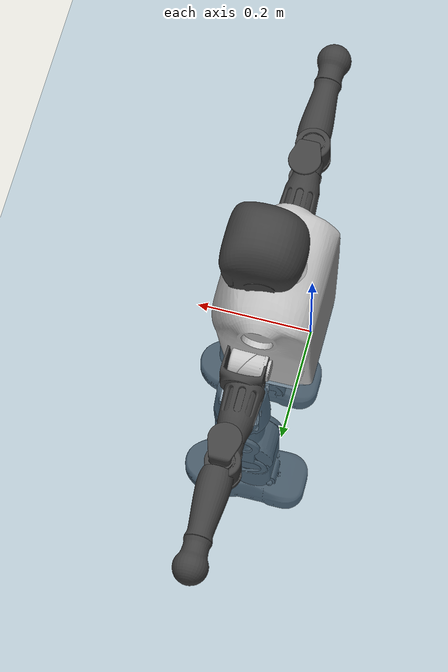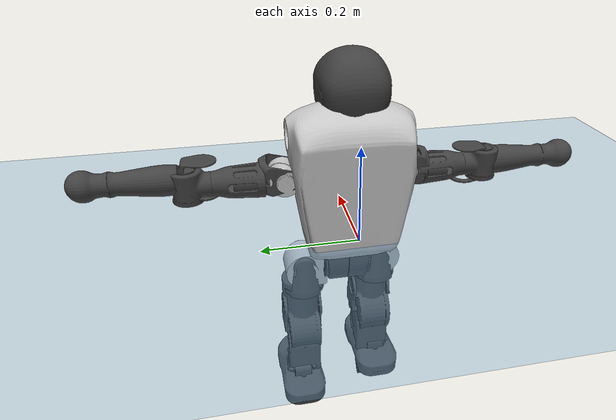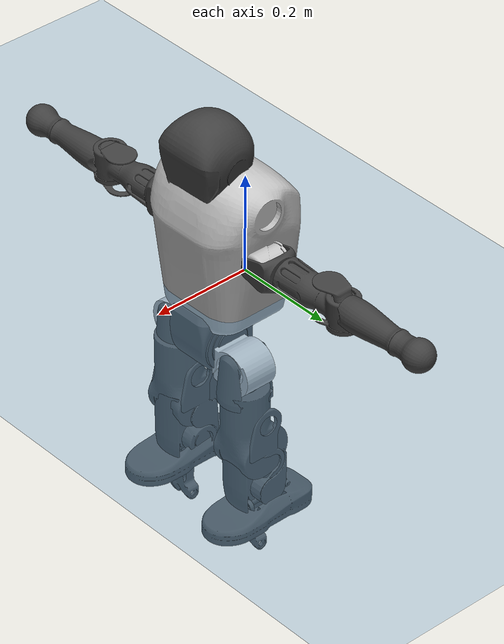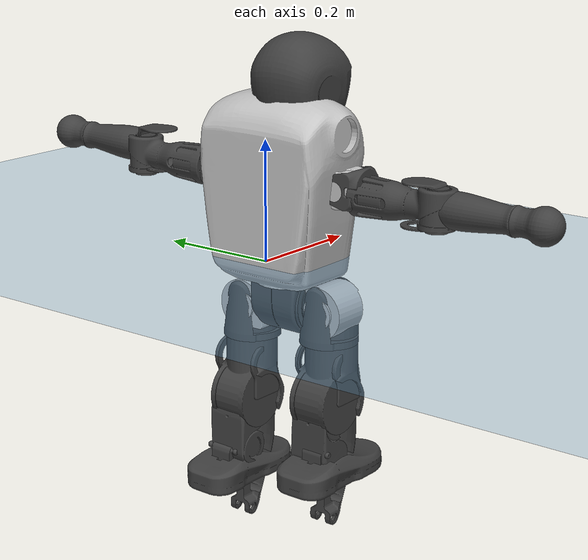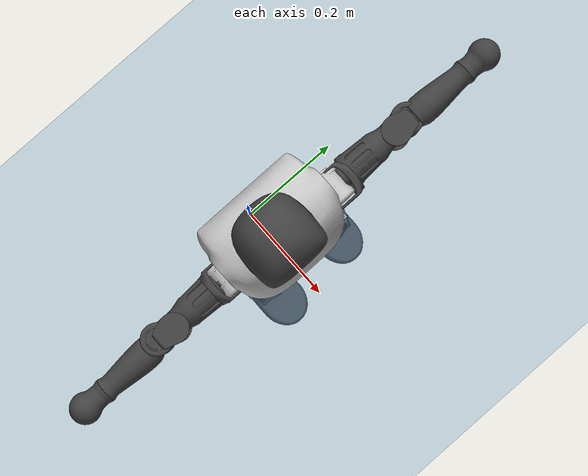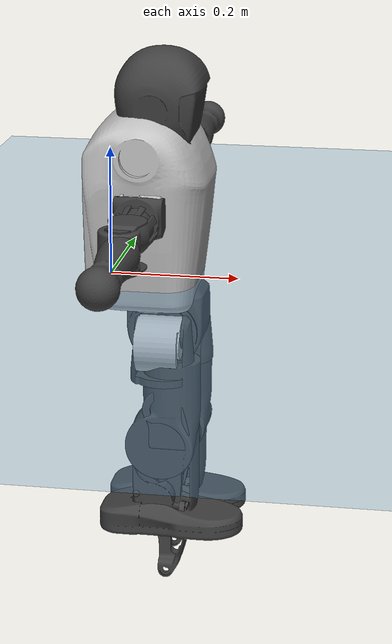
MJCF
<mujoco model="T1">
  <compiler angle="radian" assetdir="assets" balanceinertia="true" inertiafromgeom="false"/>

  <option timestep="0.005" density="1.2" viscosity="2e-05"/>

  <size nkey="1"/>

  <visual>
    <quality shadowsize="8192"/>
    <map shadowclip="0.5"/>
  </visual>

  <default>
    <default class="/">
      <joint armature="0.01" damping="0.01" frictionloss="0.1"/>
      <geom contype="0" conaffinity="0" group="1" solref="-1000 -80"/>
      <site size="0.01 0.005 0.005" group="5"/>
      <general forcelimited="true" biastype="affine" gainprm="25" biasprm="0 -25 -0.6"/>
      <default class="t1">
        <geom rgba="0.25 0.25 0.25 1"/>
        <default class="visual">
          <geom type="mesh" group="2"/>
        </default>
        <default class="collision">
          <geom group="3"/>
        </default>
        <default class="foot">
          <geom size="0.1115 0.05 0.015" type="box" condim="6" group="4" priority="1" solimp="0.015 1 0.015"/>
        </default>
        <default class="reward_collision_sphere">
          <geom group="5" rgba="1 0 0 1"/>
        </default>
      </default>
    </default>
  </default>

  <asset>
    <texture type="skybox" colorspace="auto" name="//unnamed_texture_0" builtin="gradient" rgb1="0.95 0.95 0.95" rgb2="0.95 0.95 0.95" width="100" height="600"/>
    <texture type="2d" colorspace="auto" name="texplane" builtin="checker" rgb1="0.345 0.575 0.748" rgb2="0.345 0.575 0.748" markrgb="1 1 1" width="512" height="512"/>
    <material name="MatPlane" class="/" texture="texplane" texuniform="true" texrepeat="2 2" specular="0.9"/>
    <mesh name="Trunk" class="/" file="Trunk.stl"/>
    <mesh name="H1" class="/" file="H1.stl"/>
    <mesh name="H2" class="/" file="H2.stl"/>
    <mesh name="AL1" class="/" file="AL1.stl"/>
    <mesh name="AL2" class="/" file="AL2.stl"/>
    <mesh name="AL3" class="/" file="AL3.stl"/>
    <mesh name="left_hand_link" class="/" file="left_hand_link.stl"/>
    <mesh name="AR1" class="/" file="AR1.stl"/>
    <mesh name="AR2" class="/" file="AR2.stl"/>
    <mesh name="AR3" class="/" file="AR3.stl"/>
    <mesh name="right_hand_link" class="/" file="right_hand_link.stl"/>
    <mesh name="Waist" class="/" file="Waist.stl"/>
    <mesh name="Hip_Pitch_Left" class="/" file="Hip_Pitch_Left.stl"/>
    <mesh name="Hip_Roll_Left" class="/" file="Hip_Roll_Left.stl"/>
    <mesh name="Hip_Yaw_Left" class="/" file="Hip_Yaw_Left.stl"/>
    <mesh name="Shank_Left" class="/" file="Shank_Left.stl"/>
    <mesh name="Ankle_Cross_Left" class="/" file="Ankle_Cross_Left.stl"/>
    <mesh name="left_foot_link" class="/" file="left_foot_link.stl"/>
    <mesh name="Hip_Pitch_Right" class="/" file="Hip_Pitch_Right.stl"/>
    <mesh name="Hip_Roll_Right" class="/" file="Hip_Roll_Right.stl"/>
    <mesh name="Hip_Yaw_Right" class="/" file="Hip_Yaw_Right.stl"/>
    <mesh name="Shank_Right" class="/" file="Shank_Right.stl"/>
    <mesh name="Ankle_Cross_Right" class="/" file="Ankle_Cross_Right.stl"/>
    <mesh name="right_foot_link" class="/" file="right_foot_link.stl"/>
  </asset>

  <worldbody>
    <geom name="floor" class="/" size="100 100 0.125" type="plane" group="0" material="MatPlane"/>
    <light name="toplight_shadow" class="/" pos="0 0 5" dir="0.0990148 0.0990148 -0.990148" type="directional" ambient="0.04 0.04 0.04" diffuse="0.55 0.55 0.55" specular="0.12 0.12 0.12"/>
    <light name="toplight_fill" class="/" pos="0 0 5" dir="0.0990148 0.0990148 -0.990148" type="directional" castshadow="false" ambient="0.04 0.04 0.04" diffuse="0.3 0.3 0.3" specular="0.08 0.08 0.08"/>
    <body name="trunk" childclass="t1" pos="0.00296237 0.00877365 -0.00709277" quat="0.999989 0.0019989 0.00291003 0.00295285">
      <inertial pos="0.0632243 -0.00223564 0.0589433" quat="0.999955 -0.0059189 -0.00723793 0.00158409" mass="7.06194" diaginertia="0.185188 0.0196781 0.0028883"/>
      <joint name="//unnamed_joint_0" type="free" armature="0" damping="0" frictionloss="0"/>
      <geom name="//unnamed_geom_1" class="visual" rgba="0.76 0.76 0.76 1" mesh="Trunk"/>
      <geom name="//unnamed_geom_2" class="collision" size="0.0638507 0.0851342 0.127701" pos="0.0717555 0 0.0703218" type="box"/>
      <geom name="//unnamed_geom_3" class="reward_collision_sphere" size="0.0979044" pos="0.0717555 0 0.0586015"/>
      <geom name="//unnamed_geom_4" class="reward_collision_sphere" size="0.0127701" pos="0.0717555 0.0656273 0"/>
      <geom name="//unnamed_geom_5" class="reward_collision_sphere" size="0.0127701" pos="0.0717555 -0.0656273 0"/>
      <geom name="//unnamed_geom_6" class="reward_collision_sphere" size="0.0127701" pos="0.0717555 0.0826133 0.105483"/>
      <geom name="//unnamed_geom_7" class="reward_collision_sphere" size="0.0127701" pos="0.0717555 -0.0826133 0.105483"/>
      <site name="imu" pos="-0.0354701 0.00739492 -0.00626889" size="0.00851342"/>
      <camera name="track" pos="0 -1.54417 0" quat="0.707107 0.707107 0 0" mode="trackcom"/>
      <camera name="ego_camera" pos="0.145903 0 0.246126" quat="-0.5 -0.5 0.5 0.5"/>
      <body name="H1" pos="0.0655122 -0.00934515 0.149301" quat="1 -7.48044e-05 1.53685e-05 8.48727e-05">
        <inertial pos="0.00703729 -0.004442 0.0264519" quat="0.777519 0.0189965 0.0460193 0.626886" mass="0.290472" diaginertia="0.00063115 5.99524e-05 1.10282e-05"/>
        <joint name="AAHead_yaw" pos="0 0 0" axis="-0.000475988 0.00203272 0.999998" range="-1.50085 1.72415" armature="0.0121188" damping="0.00292791" frictionloss="0.0345681"/>
        <geom name="//unnamed_geom_8" class="visual" mesh="H1"/>
        <body name="H2" pos="-0.00186873 -0.000296829 0.0305239" quat="1 -0.000231093 0.000297734 0.00047043">
          <inertial pos="0.00809807 -0.00196896 0.0578835" quat="0.988591 0.0941667 -0.0771858 -0.0886674" mass="0.426145" diaginertia="0.00580405 0.000562682 0.000115438"/>
          <joint name="Head_pitch" pos="0 0 0" axis="-0.00135126 -0.999998 -0.00136127" range="-1.25379 0.374903" armature="0.0132835" damping="0" frictionloss="0.0906697"/>
          <geom name="//unnamed_geom_9" class="visual" mesh="H2"/>
          <geom name="//unnamed_geom_10" class="collision" size="0.0681074" pos="0.0119593 0 0.0644617"/>
          <geom name="//unnamed_geom_11" class="reward_collision_sphere" size="0.0766208" pos="0.0239185 0 0.0586015"/>
        </body>
      </body>
      <body name="AL1" pos="0.0697782 0.0825582 0.12919" quat="1 2.64896e-05 -0.0001438 -4.76726e-06">
        <inertial pos="0.00374878 0.0339043 -0.00153486" quat="0.487649 0.460184 -0.543551 0.504958" mass="0.320437" diaginertia="0.0033421 0.000328264 1.76733e-05"/>
        <joint name="Left_Shoulder_Pitch" pos="0 0 0" axis="0.0250206 0.999667 -0.00632333" range="-3.27468 1.15476" armature="0.00764521" damping="0.00824131" frictionloss="0.0840641"/>
        <geom name="//unnamed_geom_12" class="visual" rgba="0.76 0.76 0.76 1" mesh="AL1"/>
        <body name="AL2" pos="0.00415134 0.0373241 0.00393539" quat="1 0.000607899 -0.000668555 0.000232311">
          <inertial pos="0.00780517 0.0342017 -0.00105829" quat="0.481188 0.512286 -0.488891 0.516726" mass="0.102895" diaginertia="0.000981399 9.59433e-05 1.23914e-05"/>
          <joint name="Left_Shoulder_Roll" pos="0 0 0" axis="-1 0.000337997 0.000933606" range="-1.50326 1.6315" armature="0.00824728" damping="0.00120631" frictionloss="0.081667"/>
          <geom name="//unnamed_geom_13" class="visual" mesh="AL2"/>
          <body name="AL3" pos="-0.00813759 0.0481492 -0.00452674" quat="0.999993 0.0029618 0.00209971 -0.000278442">
            <inertial pos="0.0104939 0.0673984 -0.00100517" quat="0.706774 0.70744 -0.000268289 1.04151e-07" mass="0.575843" diaginertia="0.0297904 0.00394208 4.36483e-05"/>
            <joint name="Left_Elbow_Pitch" pos="0 0 0" axis="0.00580895 -0.999983 0.000108971" range="-2.30992 2.26132" armature="0.0106535" damping="0" frictionloss="0.085638"/>
            <geom name="//unnamed_geom_14" class="visual" mesh="AL3"/>
            <geom name="//unnamed_geom_15" class="collision" size="0.0255403 0.0638507" pos="0 0.0386043 0" quat="0.707105 0.707108 0 0" type="cylinder"/>
            <geom name="//unnamed_geom_16" class="reward_collision_sphere" size="0.0306483"/>
            <body name="left_hand_link" pos="0.00461242 0.115386 0.01166" quat="0.999989 0.00131132 -0.00394199 -0.00231195">
              <inertial pos="-0.00197381 0.0907977 -0.00600654" quat="0.713289 0.70051 0.0161201 -0.0156608" mass="0.229718" diaginertia="0.0201219 0.0024505 1.8551e-05"/>
              <joint name="Left_Elbow_Yaw" pos="0 0 0" axis="0.00192479 -0.00180086 0.999997" range="-2.44872 0.0552196" armature="0.0081642" damping="0.00943775" frictionloss="0.0780847"/>
              <geom name="//unnamed_geom_17" class="visual" mesh="left_hand_link"/>
              <geom name="//unnamed_geom_18" class="collision" size="0.0255403 0.0744925" pos="0 0.100371 0" quat="0.707105 0.707108 0 0" type="cylinder"/>
              <geom name="//unnamed_geom_19" class="reward_collision_sphere" size="0.0425671"/>
              <geom name="//unnamed_geom_20" class="reward_collision_sphere" size="0.029797" pos="0 0.0849295 0"/>
              <geom name="//unnamed_geom_21" class="reward_collision_sphere" size="0.029797" pos="0 0.165999 0"/>
            </body>
          </body>
        </body>
      </body>
      <body name="AR1" pos="0.063871 -0.0713792 0.133501" quat="1 4.06067e-05 0.000307425 1.493e-05">
        <inertial pos="0.0015284 -0.0261783 -0.0103934" quat="0.505281 0.496497 -0.503261 0.494884" mass="0.349289" diaginertia="0.00358522 0.000425061 2.1555e-05"/>
        <joint name="Right_Shoulder_Pitch" pos="0 0 0" axis="-0.0394315 -0.99878 0.0297186" range="-1.37592 3.27394" armature="0.00747435" damping="0.00502007" frictionloss="0.0529196"/>
        <geom name="//unnamed_geom_22" class="visual" rgba="0.76 0.76 0.76 1" mesh="AR1"/>
        <body name="AR2" pos="-0.0006838 -0.0314856 0.00194278" quat="0.999997 0.000996055 0.00168452 0.00170954">
          <inertial pos="0.00978358 -0.027474 0.00548694" quat="0.528184 0.483312 -0.512808 0.473772" mass="0.0836931" diaginertia="0.000848239 7.88771e-05 1.19199e-05"/>
          <joint name="Right_Shoulder_Roll" pos="0 0 0" axis="-0.999776 -0.0197212 0.0076995" stiffness="0.00691915" range="-1.7035 1.53464" armature="0.0123435" damping="0" frictionloss="0.083158"/>
          <geom name="//unnamed_geom_23" class="visual" mesh="AR2"/>
          <body name="AR3" pos="-0.000577657 -0.037907 -0.00948093" quat="0.999992 -0.00248233 0.00298138 0.000992463">
            <inertial pos="-0.0117233 -0.0644748 -0.00905595" quat="0.706101 0.708077 0.00638706 0.00283984" mass="0.681421" diaginertia="0.0383371 0.00378826 4.79385e-05"/>
            <joint name="Right_Elbow_Pitch" pos="0 0 0" axis="1.99613e-05 0.999998 -0.00177542" stiffness="0.0188983" range="-2.26403 2.2312" armature="0.00902291" damping="0" frictionloss="0.0346465"/>
            <geom name="//unnamed_geom_24" class="visual" mesh="AR3"/>
            <geom name="//unnamed_geom_25" class="collision" size="0.0255403 0.0638507" pos="0 -0.0386043 0" quat="0.707105 0.707108 0 0" type="cylinder"/>
            <geom name="//unnamed_geom_26" class="reward_collision_sphere" size="0.0306483"/>
            <body name="right_hand_link" pos="0.00560026 -0.11065 0.000673369" quat="1 -2.54499e-05 -1.58398e-05 -5.90795e-05">
              <inertial pos="4.50678e-05 -0.0859927 0.00121699" quat="0.709477 0.704684 0.00724437 0.00321919" mass="0.191603" diaginertia="0.0173565 0.00194308 1.34497e-05"/>
              <joint name="Right_Elbow_Yaw" pos="0 0 0" axis="-0.0543794 0.012531 0.998442" range="0.0347342 2.4307" armature="0.010245" damping="0.000434074" frictionloss="0.0641556"/>
              <geom name="//unnamed_geom_27" class="visual" mesh="right_hand_link"/>
              <geom name="//unnamed_geom_28" class="collision" size="0.0255403 0.0744925" pos="0 -0.100371 0" quat="0.707105 0.707108 0 0" type="cylinder"/>
              <geom name="//unnamed_geom_29" class="reward_collision_sphere" size="0.0425671"/>
              <geom name="//unnamed_geom_30" class="reward_collision_sphere" size="0.029797" pos="0 -0.0849295 0"/>
              <geom name="//unnamed_geom_31" class="reward_collision_sphere" size="0.029797" pos="0 -0.165999 0"/>
            </body>
          </body>
        </body>
      </body>
      <body name="Waist" pos="0.0865626 0.00345999 -0.0733578" quat="0.999986 0.00402674 -0.00105172 -0.00339751">
        <inertial pos="0.0127319 -0.00710492 0.0110604" quat="0.990184 -0.020369 -0.136904 -0.0194505" mass="1.81779" diaginertia="0.0136676 0.00151622 0.000338281"/>
        <joint name="Waist" pos="0 0 0" axis="0.00110331 0.0280272 0.999607" range="-1.57635 1.55054" armature="0.00833492" damping="0.0158642" frictionloss="0.0915475"/>
        <geom name="//unnamed_geom_32" class="visual" mesh="Waist"/>
        <body name="Hip_Pitch_Left" pos="0.00343435 0.0890586 -0.00845991" quat="1 5.73361e-05 7.5195e-06 -0.000535395">
          <inertial pos="-0.00906495 -0.00376981 -0.0107546" quat="0.973192 0.227597 -0.0288783 0.0162363" mass="0.597968" diaginertia="0.00461627 0.00033883 8.25803e-05"/>
          <joint name="Left_Hip_Pitch" pos="0 0 0" axis="0.0244995 0.999277 -0.0290855" range="-1.86373 1.57719" armature="0.00640816" damping="0" frictionloss="0.0920286"/>
          <geom name="//unnamed_geom_33" class="visual" rgba="0.76 0.76 0.76 1" mesh="Hip_Pitch_Left"/>
          <body name="Hip_Roll_Left" pos="0.00478919 0.00367906 -0.00325894" quat="1 -0.000347323 -0.000182475 -0.000327122">
            <inertial pos="0.00282037 0.0111954 -0.0282826" quat="0.707395 -0.00451882 -0.0067618 0.706772" mass="0.253332" diaginertia="0.00515689 0.000512497 3.29989e-05"/>
            <joint name="Left_Hip_Roll" pos="0 0 0" axis="-0.999821 -0.0187533 0.00236612" stiffness="0.00112705" range="-1.56196 0.111407" armature="0.00813259" damping="0.0616282" frictionloss="0.0535363"/>
            <geom name="//unnamed_geom_34" class="visual" mesh="Hip_Roll_Left"/>
            <geom name="//unnamed_geom_35" class="reward_collision_sphere" size="0.0468238"/>
            <body name="Hip_Yaw_Left" pos="0.000913661 0.0039719 -0.0508962" quat="0.999997 0.00113865 0.00224945 0.000706712">
              <inertial pos="-0.00896149 -0.00183093 -0.0455817" quat="0.702683 -0.0399822 -0.0339064 0.709569" mass="1.34106" diaginertia="0.06833 0.00793779 0.00020271"/>
              <joint name="Left_Hip_Yaw" pos="0 0 0" axis="-0.00999562 -0.00947339 -0.999905" stiffness="0.0452223" range="-0.780441 0.995389" armature="0.00800459" damping="0" frictionloss="0.0908442"/>
              <geom name="//unnamed_geom_36" class="visual" mesh="Hip_Yaw_Left"/>
              <geom name="//unnamed_geom_37" class="collision" size="0.0425671 0.0681074" type="cylinder"/>
              <body name="Shank_Left" pos="-0.0142308 0.00258098 -0.0697065" quat="1 0.000523719 -0.000688144 -7.47883e-05">
                <inertial pos="0.0003462 0.00312515 -0.0726695" quat="0.995869 0.0181566 -0.0279887 0.0844469" mass="1.03686" diaginertia="0.0776962 0.0107084 0.000139938"/>
                <joint name="Left_Knee_Pitch" pos="0 0 0" axis="0.0163687 0.999835 -0.00793891" range="0.00868725 2.45689" armature="0.00544124" damping="0.0393011" frictionloss="0.0783733"/>
                <geom name="//unnamed_geom_38" class="visual" mesh="Shank_Left"/>
                <geom name="//unnamed_geom_39" class="collision" size="0.0425671 0.0638507" pos="0 0 -0.0703218" type="cylinder"/>
                <geom name="//unnamed_geom_40" class="reward_collision_sphere" size="0.0553373"/>
                <body name="Ankle_Cross_Left" pos="-0.00867766 0.00159271 -0.176003" quat="0.999997 -0.000166697 -0.00238139 -0.000241182">
                  <inertial pos="0.0075221 0.000141529 -0.00964177" quat="0.439285 0.556516 0.546323 0.445926" mass="0.0462627" diaginertia="7.68809e-05 7.13986e-06 7.67971e-07"/>
                  <joint name="Left_Ankle_Pitch" pos="0 0 0" axis="-0.0023752 0.999996 -0.00155833" stiffness="0.0387809" range="-0.883962 0.327576" armature="0.00352382" damping="0" frictionloss="0.0919004"/>
                  <geom name="//unnamed_geom_41" class="visual" mesh="Ankle_Cross_Left"/>
                  <body name="left_foot_link" pos="0.00187511 0.00649422 -0.0134131" quat="0.999982 -0.00038675 -0.00347251 0.00487851">
                    <inertial pos="0.00709514 0.00479849 -0.00594521" quat="-0.0251165 0.592423 0.0211422 0.804958" mass="0.372547" diaginertia="0.00600108 0.000628559 0.000127495"/>
                    <joint name="Left_Ankle_Roll" pos="0 0 0" axis="-0.998325 -0.0431766 -0.0385061" range="-0.484462 0.320557" armature="0.00909578" damping="0.0432646" frictionloss="0.0887108"/>
                    <geom name="//unnamed_geom_42" class="visual" mesh="left_foot_link"/>
                    <geom name="left_foot" class="foot" size="0.0791939 0.058659 0.0119465" pos="0.0119593 0 -0.00879023"/>
                    <geom name="//unnamed_geom_44" class="reward_collision_sphere" size="0.0442698" pos="0.0119593 0 -0.00879023"/>
                    <geom name="//unnamed_geom_45" class="reward_collision_sphere" size="0.0255403" pos="0.113613 -0.017758 -0.00879023"/>
                    <geom name="//unnamed_geom_46" class="reward_collision_sphere" size="0.0255403" pos="-0.0837148 -0.017758 -0.00879023"/>
                    <site name="left_foot" class="foot" pos="0.0119593 0 -0.00879023" size="0.00851342"/>
                  </body>
                </body>
              </body>
            </body>
          </body>
        </body>
        <body name="Hip_Pitch_Right" pos="0.000226473 -0.0765774 0.011205" quat="1 6.30229e-05 4.35011e-05 -0.000361624">
          <inertial pos="0.0111493 0.0150082 -0.00827186" quat="0.97295 -0.229947 0.0218732 -0.00373571" mass="0.628969" diaginertia="0.00402995 0.000368554 8.77743e-05"/>
          <joint name="Right_Hip_Pitch" pos="0 0 0" axis="-0.00272585 -0.999973 -0.00685523" stiffness="0.0109294" range="-1.54994 1.91873" armature="0.00965201" damping="0.0562879" frictionloss="0.0720176"/>
          <geom name="//unnamed_geom_47" class="visual" rgba="0.76 0.76 0.76 1" mesh="Hip_Pitch_Right"/>
          <body name="Hip_Roll_Right" pos="0.00569138 0.0038701 -0.000600537" quat="0.999996 -0.00180556 -0.000107596 -0.00196822">
            <inertial pos="0.00800102 -0.00258067 -0.0380085" quat="0.714654 -0.0441622 -0.0224111 0.697723" mass="0.22677" diaginertia="0.00368367 0.00042285 3.4627e-05"/>
            <joint name="Right_Hip_Roll" pos="0 0 0" axis="-0.999966 0.00222525 0.00793764" range="-0.20361 1.59059" armature="0.00816544" damping="0" frictionloss="0.0576758"/>
            <geom name="//unnamed_geom_48" class="visual" mesh="Hip_Roll_Right"/>
            <geom name="//unnamed_geom_49" class="reward_collision_sphere" size="0.0468238"/>
            <body name="Hip_Yaw_Right" pos="0.0109131 0.00430906 -0.0458772" quat="0.999999 -0.000466773 -0.000774129 0.000478698">
              <inertial pos="-0.00855598 0.00126252 -0.0578206" quat="0.71983 -0.0320386 -0.0377508 0.692382" mass="1.29426" diaginertia="0.0536121 0.00695948 0.000151412"/>
              <joint name="Right_Hip_Yaw" pos="0 0 0" axis="-0.000750122 -0.00253616 -0.999997" stiffness="0.00186712" range="-1.04991 0.949638" armature="0.00864232" damping="0" frictionloss="0.0950198"/>
              <geom name="//unnamed_geom_50" class="visual" mesh="Hip_Yaw_Right"/>
              <geom name="//unnamed_geom_51" class="collision" size="0.0425671 0.0681074" type="cylinder"/>
              <body name="Shank_Right" pos="-0.00823599 0.00405659 -0.0720377" quat="0.999999 -0.000131386 -0.00100521 0.000729585">
                <inertial pos="-0.0060237 0.00826119 -0.0735648" quat="0.998577 0.0325828 -0.0142679 -0.039736" mass="0.962049" diaginertia="0.0870111 0.00936483 0.000148455"/>
                <joint name="Right_Knee_Pitch" pos="0 0 0" axis="-0.00957673 -0.999953 -0.00120635" stiffness="0.000172195" range="-2.14692 0.0238452" armature="0.00910219" damping="0" frictionloss="0.0830821"/>
                <geom name="//unnamed_geom_52" class="visual" mesh="Shank_Right"/>
                <geom name="//unnamed_geom_53" class="collision" size="0.0425671 0.0638507" pos="0 0 -0.0703218" type="cylinder"/>
                <geom name="//unnamed_geom_54" class="reward_collision_sphere" size="0.0553373"/>
                <body name="Ankle_Cross_Right" pos="0.00290544 -0.000807571 -0.161432" quat="1 0.000134074 -0.000116318 -0.00037337">
                  <inertial pos="-0.00790709 -0.00435978 -0.00465646" quat="0.444678 0.55048 0.551962 0.441103" mass="0.0491746" diaginertia="6.38328e-05 7.71588e-06 7.05459e-07"/>
                  <joint name="Right_Ankle_Pitch" pos="0 0 0" axis="-0.0318558 -0.998941 0.0331962" stiffness="0.0377637" range="-0.463184 1.0152" armature="0.00848875" damping="0" frictionloss="0.0904519"/>
                  <geom name="//unnamed_geom_55" class="visual" mesh="Ankle_Cross_Right"/>
                  <body name="right_foot_link" pos="-0.00417262 -0.00857758 -0.0153385" quat="1 -0.00052032 0.000289629 0.000329166">
                    <inertial pos="-0.000412643 -0.00858835 0.00608371" quat="0.0298667 0.603735 0.0233505 0.796283" mass="0.50905" diaginertia="0.00767337 0.00076428 0.000197275"/>
                    <joint name="Right_Ankle_Roll" pos="0 0 0" axis="-0.999911 0.0100278 -0.00877605" range="-0.280915 0.235778" armature="0.0135128" damping="0.0620192" frictionloss="0.056499"/>
                    <geom name="//unnamed_geom_56" class="visual" mesh="right_foot_link"/>
                    <geom name="right_foot" class="foot" size="0.0745327 0.0561375 0.00861992" pos="0.0119593 0 -0.00879023"/>
                    <geom name="//unnamed_geom_58" class="reward_collision_sphere" size="0.0340537"/>
                    <geom name="//unnamed_geom_59" class="reward_collision_sphere" size="0.0255403" pos="0.0119593 0 -0.00879023"/>
                    <geom name="//unnamed_geom_60" class="reward_collision_sphere" size="0.0255403" pos="0.113613 0.017758 -0.00879023"/>
                    <geom name="//unnamed_geom_61" class="reward_collision_sphere" size="0.0255403" pos="-0.0837148 0.017758 -0.00879023"/>
                    <site name="right_foot" class="foot" pos="0.0119593 0 -0.00879023" size="0.00851342"/>
                  </body>
                </body>
              </body>
            </body>
          </body>
        </body>
      </body>
    </body>
  </worldbody>

  <contact>
    <pair class="/" geom1="floor" geom2="left_foot" name="//unnamed_contact_0"/>
    <pair class="/" geom1="floor" geom2="right_foot" name="//unnamed_contact_1"/>
  </contact>

  <actuator>
    <general name="AAHead_yaw" class="/" joint="AAHead_yaw" forcerange="-5.68181 5.68181" gainprm="23.3366" biasprm="0 -23.3366 -0.45131"/>
    <general name="Head_pitch" class="/" joint="Head_pitch" forcerange="-6.35028 6.35028" gainprm="23.3366" biasprm="0 -23.3366 -0.45131"/>
    <general name="Left_Shoulder_Pitch" class="/" joint="Left_Shoulder_Pitch" forcerange="-22.1076 22.1076" gainprm="23.3366" biasprm="0 -23.3366 -0.45131"/>
    <general name="Left_Shoulder_Roll" class="/" joint="Left_Shoulder_Roll" forcerange="-20.5501 20.5501" gainprm="23.3366" biasprm="0 -23.3366 -0.45131"/>
    <general name="Left_Elbow_Pitch" class="/" joint="Left_Elbow_Pitch" forcerange="-11.8063 11.8063" gainprm="23.3366" biasprm="0 -23.3366 -0.45131"/>
    <general name="Left_Elbow_Yaw" class="/" joint="Left_Elbow_Yaw" forcerange="-14.5947 14.5947" gainprm="23.3366" biasprm="0 -23.3366 -0.45131"/>
    <general name="Right_Shoulder_Pitch" class="/" joint="Right_Shoulder_Pitch" forcerange="-15.6078 15.6078" gainprm="23.3366" biasprm="0 -23.3366 -0.45131"/>
    <general name="Right_Shoulder_Roll" class="/" joint="Right_Shoulder_Roll" forcerange="-11.4514 11.4514" gainprm="23.3366" biasprm="0 -23.3366 -0.45131"/>
    <general name="Right_Elbow_Pitch" class="/" joint="Right_Elbow_Pitch" forcerange="-15.2925 15.2925" gainprm="23.3366" biasprm="0 -23.3366 -0.45131"/>
    <general name="Right_Elbow_Yaw" class="/" joint="Right_Elbow_Yaw" forcerange="-15.911 15.911" gainprm="23.3366" biasprm="0 -23.3366 -0.45131"/>
    <general name="Waist" class="/" joint="Waist" forcerange="-33.4336 33.4336" gainprm="23.3366" biasprm="0 -23.3366 -0.45131"/>
    <general name="Left_Hip_Pitch" class="/" joint="Left_Hip_Pitch" forcerange="-39.5157 39.5157" gainprm="23.3366" biasprm="0 -23.3366 -0.45131"/>
    <general name="Left_Hip_Roll" class="/" joint="Left_Hip_Roll" forcerange="-22.8775 22.8775" gainprm="23.3366" biasprm="0 -23.3366 -0.45131"/>
    <general name="Left_Hip_Yaw" class="/" joint="Left_Hip_Yaw" forcerange="-30.4241 30.4241" gainprm="23.3366" biasprm="0 -23.3366 -0.45131"/>
    <general name="Left_Knee_Pitch" class="/" joint="Left_Knee_Pitch" forcerange="-47.1919 47.1919" gainprm="23.3366" biasprm="0 -23.3366 -0.45131"/>
    <general name="Left_Ankle_Pitch" class="/" joint="Left_Ankle_Pitch" forcerange="-16.7456 16.7456" gainprm="23.3366" biasprm="0 -23.3366 -0.45131"/>
    <general name="Left_Ankle_Roll" class="/" joint="Left_Ankle_Roll" forcerange="-11.7454 11.7454" gainprm="23.3366" biasprm="0 -23.3366 -0.45131"/>
    <general name="Right_Hip_Pitch" class="/" joint="Right_Hip_Pitch" forcerange="-25.0418 25.0418" gainprm="23.3366" biasprm="0 -23.3366 -0.45131"/>
    <general name="Right_Hip_Roll" class="/" joint="Right_Hip_Roll" forcerange="-14.6161 14.6161" gainprm="23.3366" biasprm="0 -23.3366 -0.45131"/>
    <general name="Right_Hip_Yaw" class="/" joint="Right_Hip_Yaw" forcerange="-24.2121 24.2121" gainprm="23.3366" biasprm="0 -23.3366 -0.45131"/>
    <general name="Right_Knee_Pitch" class="/" joint="Right_Knee_Pitch" forcerange="-42.2288 42.2288" gainprm="23.3366" biasprm="0 -23.3366 -0.45131"/>
    <general name="Right_Ankle_Pitch" class="/" joint="Right_Ankle_Pitch" forcerange="-24.1496 24.1496" gainprm="23.3366" biasprm="0 -23.3366 -0.45131"/>
    <general name="Right_Ankle_Roll" class="/" joint="Right_Ankle_Roll" forcerange="-8.99743 8.99743" gainprm="23.3366" biasprm="0 -23.3366 -0.45131"/>
  </actuator>

  <sensor>
    <gyro site="imu" name="imu_angular_velocity"/>
    <velocimeter site="imu" name="imu_linear_velocity"/>
    <framelinvel objtype="site" objname="left_foot" name="left_foot_global_linear_velocity"/>
    <framelinvel objtype="site" objname="right_foot" name="right_foot_global_linear_velocity"/>
  </sensor>

  <keyframe>
    <key name="home" qpos="0 0 0.6385 1 0 0 0 0 0 0 1.4 0 -0.4 0 -1.4 0 0.4 0 -0.4 0 0 0.8 -0.4 0 0.4 0 0 -0.8 0.4 0"/>
  </keyframe>
</mujoco>
